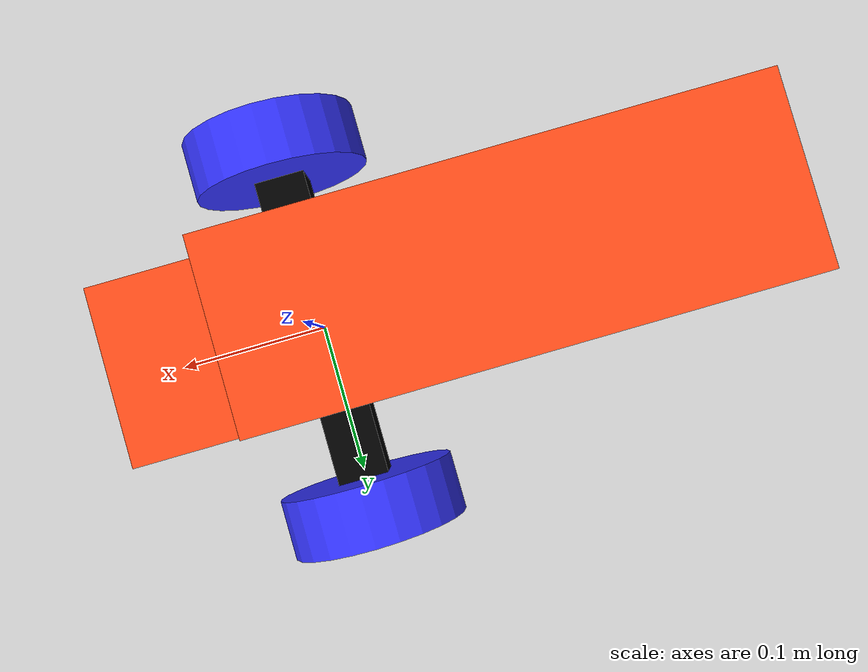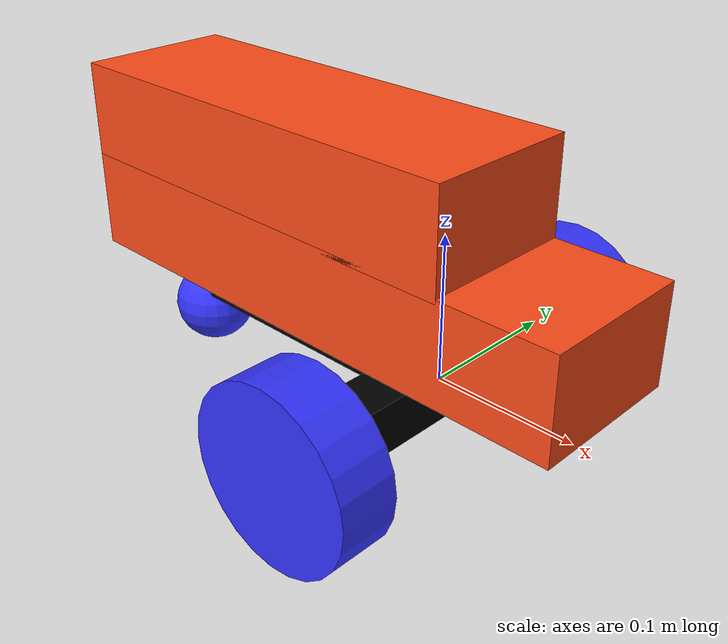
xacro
<?xml version="1.0"?>
<robot xmlns:xacro="http://www.ros.org/wiki/xacro"  name="scout">

    <xacro:include filename="robot_core.xacro"/>
    <xacro:include filename="gazebo_control.xacro"/>

</robot>

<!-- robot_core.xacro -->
<robot xmlns:xacro="http://www.ros.org/wiki/xacro" >

    <xacro:include filename="inertial_macros.xacro"/>

    <!-- FARBEN in RotGrünBlauAmber-->

    <material name="white">
        <color rgba="1 1 1 1"/>
    </material>

    <material name="black">
        <color rgba="0 0 0 1"/>
    </material>

    <material name="blue">
        <color rgba="0.2 0.2 1 1"/>
    </material>

    <material name="yellow">
        <color rgba="1 1 0 1"/>
    </material>

    <material name="orange">
        <color rgba="1 0.3 0.1 1"/>
    </material>

    <material name="green">
        <color rgba="0.0 1.0 0.0 1.0"/>
    </material>

    <material name="LightGrey">
        <color rgba="0.7 0.7 0.7 1.0"/>
    </material>

    <material name="red">
        <color rgba="1 0. 0. 1.0"/>
    </material>

    <!-- BASE LINK -->

    <link name="base_link"/>

    <!-- Chassis Link AKA Rad Strebe-->

    <joint name="chassis_joint" type="fixed">
        <parent link="base_link"/>
        <child link="chassis"/>
        <origin xyz="0.0 0.0 0.0"/>
    </joint>

    <link name="chassis">
        <visual>
            <origin xyz="0.0 0.0 0.003" rpy="0.0 0.0 0.0"/>
            <geometry>
                <box size="0.034 0.25 0.034"/>
            </geometry>
            <material name="black"/>
        </visual>
        <collision>
            <origin xyz="0.0 0.0 0.003" rpy="0.0 0.0 0.0"/>
            <geometry>
                <box size="0.034 0.25 0.034"/>
            </geometry>
        </collision>
        <xacro:inertial_box mass="1.5" x="0.034" y="0.25" z="0.034">
            <origin xyz="0.0 0.0 0.0" rpy="0.0 0.0 0.0"/>
        </xacro:inertial_box>
    </link>
    <gazebo reference="chassis">
        <material>Gazebo/Black</material>
    </gazebo>

    <joint name="chassi_t_joint" type="fixed">
       <parent link="chassis"/>
       <child link="chassis_t"/>
       <origin xyz="-0.12 0.0 0.0"/>
    </joint>

    <link name="chassis_t">
        <visual>
            <origin xyz="0.0 0.0 0.003" rpy="0.0 0.0 -${pi/2}"/>
            <geometry>
                <box size="0.034 0.25 0.034"/>
            </geometry>
            <material name="black"/>
        </visual>
        <collision>
            <origin xyz="0.0 0.0 0.003" rpy="0.0 0.0 0.0"/>
            <geometry>
                <box size="0.034 0.25 0.034"/>
            </geometry>
        </collision>
        <xacro:inertial_box mass="1.5" x="0.034" y="0.25" z="0.034">
            <origin xyz="0.0 0.0 0.0" rpy="0.0 0.0 0.0"/>
        </xacro:inertial_box>
    </link>
    <gazebo reference="chassis_t">
        <material>Gazebo/Black</material>
    </gazebo>

    <!-- Linker Reifen-->

    <joint name="left_wheel_joint" type="continuous">
        <origin xyz="0.0 0.125 0.0" rpy="-${pi/2} 0.0 0.0"/>
        <parent link="base_link"/>
        <child link="left_wheel_link"/>
        <axis xyz="0.0 0.0 1.0"/>
    </joint>

    <link name="left_wheel_link">
        <visual>
            <geometry>
                <cylinder radius="0.06" length="0.04"/>
            </geometry>
            <material name="blue"/>
        </visual>
        <collision>
            <geometry>
                <cylinder radius="0.06" length="0.04"/>
            </geometry>
        </collision>
        <xacro:inertial_cylinder mass="0.3" length="0.06" radius="0.04">
            <origin xyz="0.0 0.0 0.0" rpy="0.0 0.0 0.0"/>
        </xacro:inertial_cylinder>
    </link>
    <gazebo reference="left_wheel_link">
        <material>Gazebo/Blue</material>
    </gazebo>

    <!-- Rechter Reifen-->

    <joint name="right_wheel_joint" type="continuous">
        <origin xyz="0.0 -0.125 0.0" rpy="-${pi/2} 0.0 0.0"/>
        <parent link="base_link"/>
        <child link="right_wheel_link"/>
        <axis xyz="0.0 0.0 1.0"/>
    </joint>

    <link name="right_wheel_link">
        <visual>
            <geometry>
                <cylinder radius="0.06" length="0.04"/>
            </geometry>
            <material name="blue"/>
        </visual>
        <collision>
            <geometry>
                <cylinder radius="0.06" length="0.04"/>
            </geometry>
        </collision>
        <xacro:inertial_cylinder mass="0.3" length="0.06" radius="0.04">
            <origin xyz="0.0 0.0 0.0" rpy="0.0 0.0 0.0"/>
        </xacro:inertial_cylinder>
    </link>
    <gazebo reference="right_wheel_link">
        <material>Gazebo/Blue</material>
    </gazebo>

    <!-- Caster Wheel Joint-->

    <joint name="caster_wheel_joint" type="fixed">
        <origin xyz="-0.23 0.0 -0.03" rpy="0.0 0.0 0.0"/>
        <parent link="chassis"/>
        <child link="caster_wheel"/>
    </joint>

    <link name="caster_wheel">
        <visual>
            <geometry>
                <sphere radius="0.03"/>
            </geometry>
            <material name="blue"/>
        </visual>
        <collision>
            <geometry>
                <sphere radius="0.03"/>
            </geometry>
        </collision>
        <xacro:inertial_sphere mass="0.15" radius="0.03">
            <origin xyz="0.0 0.0 0.0" rpy="0.0 0.0 0.0"/>
        </xacro:inertial_sphere>
    </link>
    <gazebo reference="caster_wheel">
        <material>Gazebo/Blue</material>
        <mu1 value="0.001"/>
        <mu2 value="0.001"/>
    </gazebo>

        <!-- Chassis Aufbau-->

    <joint name="body_base_joint" type="fixed">
        <parent link="chassis"/>
        <child link="body"/>
        <origin xyz="-0.08 0.0 0.055"/>
    </joint>

    <link name="body">
        <visual>
            <origin xyz="0.0 0.0 0.003" rpy="0.0 0.0 0.0"/>
            <geometry>
                <box size="0.4 0.11 0.07"/>
            </geometry>
            <material name="orange"/>
        </visual>
        <collision>
            <origin xyz="0.0 0.0 0.003" rpy="0.0 0.0 0.0"/>
            <geometry>
                <box size="0.4 0.11 0.07"/>
            </geometry>
        </collision>
        <xacro:inertial_box mass="0.2" x="0.4" y="0.11" z="0.07">
            <origin xyz="0.0 0.0 0.0" rpy="0.0 0.0 0.0"/>
        </xacro:inertial_box>
    </link>
    <gazebo reference="body">
        <material>Gazebo/Orange</material>
    </gazebo>

    <joint name="body_joint" type="fixed">
        <parent link="body"/>
        <child link="body_top"/>
        <origin xyz="0 0.0 0.07"/>
    </joint>

    <link name="body_top">
        <visual>
            <origin xyz="-0.04 0.0 0.0" rpy="0.0 0.0 0.0"/>
            <geometry>
                <box size="0.32 0.11 0.07"/>
            </geometry>
            <material name="orange"/>
        </visual>
        <collision>
            <origin xyz="-0.04 0.0 0.0" rpy="0.0 0.0 0.0"/>
            <geometry>
                <box size="0.32 0.11 0.07"/>
            </geometry>
        </collision>
        <xacro:inertial_box mass="0.2" x="0.32" y="0.11" z="0.07">
            <origin xyz="0.0 0.0 0.0" rpy="0.0 0.0 0.0"/>
        </xacro:inertial_box>
    </link>
    <gazebo reference="body_top">
        <material>Gazebo/Orange</material>
    </gazebo>

</robot>
